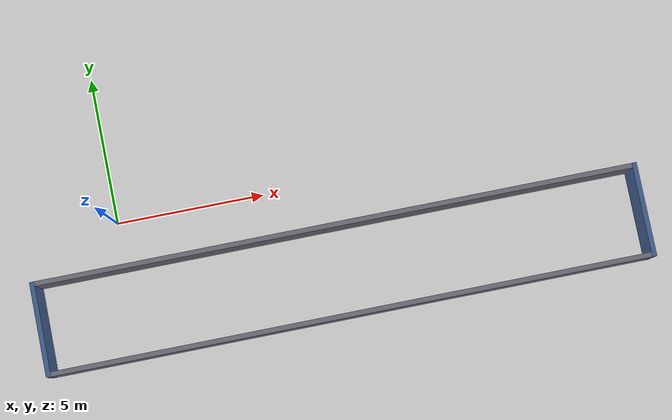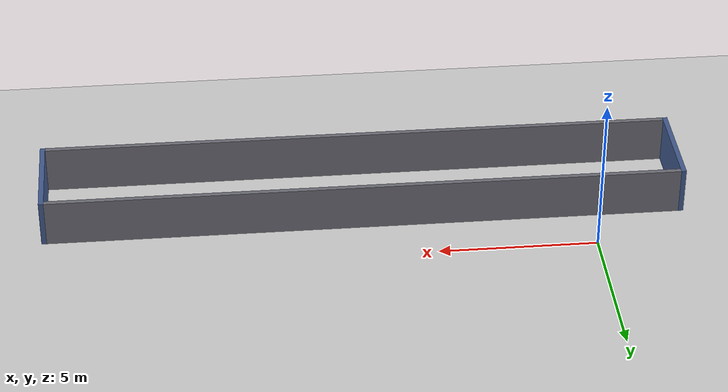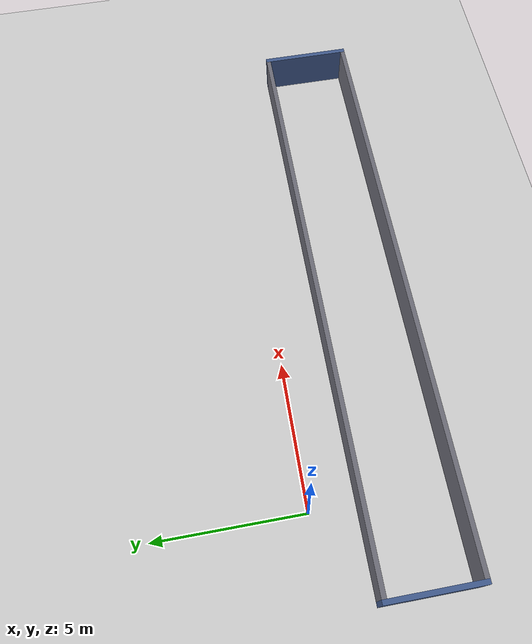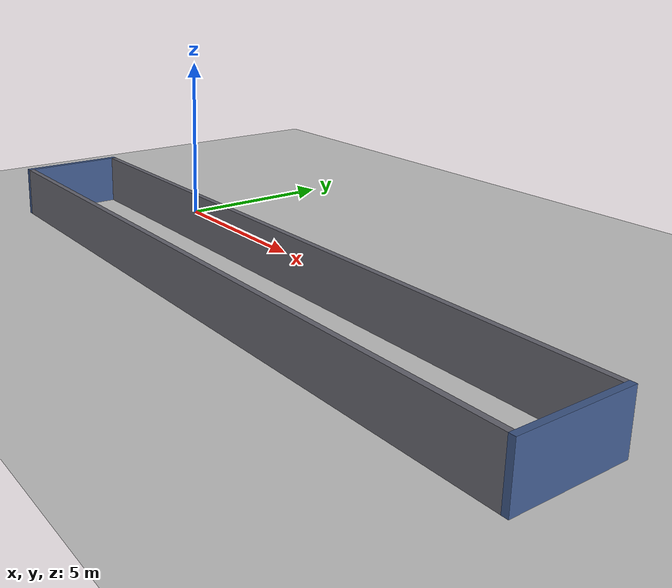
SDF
<?xml version='1.0' encoding='utf-8'?>
<sdf version="1.6">
  <world name="competition_world">
    <gravity>0 0 -9.8</gravity>

    <plugin filename="gz-sim-physics-system" name="gz::sim::systems::Physics" />
    <plugin filename="gz-sim-user-commands-system" name="gz::sim::systems::UserCommands" />
    <plugin filename="gz-sim-scene-broadcaster-system" name="gz::sim::systems::SceneBroadcaster" />
    <plugin filename="gz-sim-contact-system" name="gz::sim::systems::Contact" />

    <light name="sun" type="directional">
      <cast_shadows>true</cast_shadows>
      <pose>0 0 10 0 0 0</pose>
      <diffuse>0.8 0.8 0.8 1</diffuse>
      <specular>0.2 0.2 0.2 1</specular>
      <attenuation>
        <range>1000</range>
        <constant>0.9</constant>
        <linear>0.01</linear>
        <quadratic>0.001</quadratic>
      </attenuation>
      <direction>-0.5 0.1 -0.9</direction>
    </light>

    <model name="ground_plane">
      <static>true</static>
      <link name="link">
        <collision name="collision">
          <geometry>
            <plane>
              <normal>0 0 1</normal>
              <size>30 30</size>
            </plane>
          </geometry>
        </collision>
        <visual name="visual">
          <geometry>
            <plane>
              <normal>0 0 1</normal>
              <size>30 30</size>
            </plane>
          </geometry>
          <material>
            <ambient>0.8 0.8 0.8 1</ambient>
            <diffuse>0.8 0.8 0.8 1</diffuse>
          </material>
        </visual>
      </link>
    </model>

    <plugin filename="gz-sim-sensors-system" name="gz::sim::systems::Sensors">
      <render_engine>ogre2</render_engine>
    </plugin>

    <model name="s4_corridor_wall_north">
      <static>true</static><pose>7.15 -1.6 0.75 0 0 0</pose>
      <link name="link">
        <collision name="collision">
          <geometry><box><size>20.0 0.16 1.5</size></box></geometry>
        </collision>
        <visual name="visual">
          <geometry><box><size>20.0 0.16 1.5</size></box></geometry>
          <material><ambient>0.35 0.35 0.38 1</ambient><diffuse>0.42 0.42 0.46 1</diffuse></material>
        </visual>
      </link>
    </model>

    <model name="s4_corridor_wall_south">
      <static>true</static><pose>7.15 -4.6 0.75 0 0 0</pose>
      <link name="link">
        <collision name="collision">
          <geometry><box><size>20.0 0.16 1.5</size></box></geometry>
        </collision>
        <visual name="visual">
          <geometry><box><size>20.0 0.16 1.5</size></box></geometry>
          <material><ambient>0.35 0.35 0.38 1</ambient><diffuse>0.42 0.42 0.46 1</diffuse></material>
        </visual>
      </link>
    </model>
<model name="corridor_end_west"><static>true</static><pose>-2.93 -3.1 0.75 0 0 0</pose><link name="link"><collision name="collision"><geometry><box><size>0.16 3.16 1.5</size></box></geometry></collision><visual name="visual"><geometry><box><size>0.16 3.16 1.5</size></box></geometry><material><ambient>0.25 0.35 0.55 1</ambient><diffuse>0.25 0.35 0.55 1</diffuse></material></visual></link></model><model name="corridor_end_east"><static>true</static><pose>17.23 -3.1 0.75 0 0 0</pose><link name="link"><collision name="collision"><geometry><box><size>0.16 3.16 1.5</size></box></geometry></collision><visual name="visual"><geometry><box><size>0.16 3.16 1.5</size></box></geometry><material><ambient>0.25 0.35 0.55 1</ambient><diffuse>0.25 0.35 0.55 1</diffuse></material></visual></link></model></world>
</sdf>
